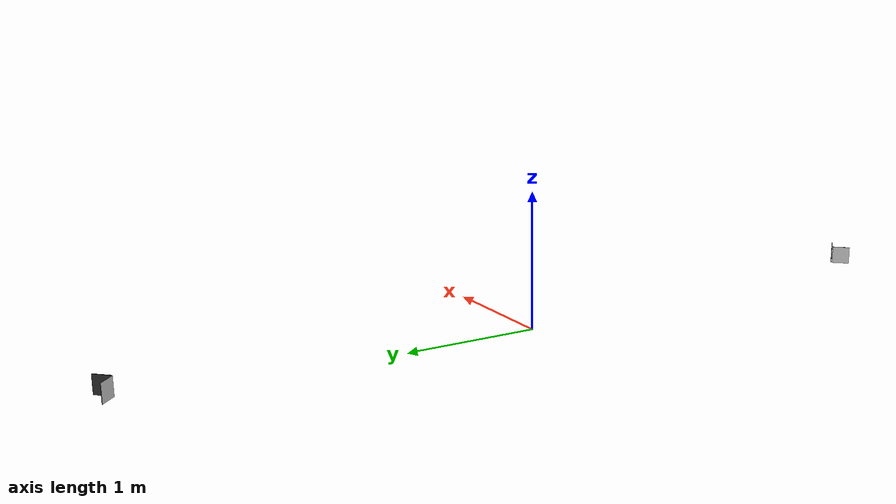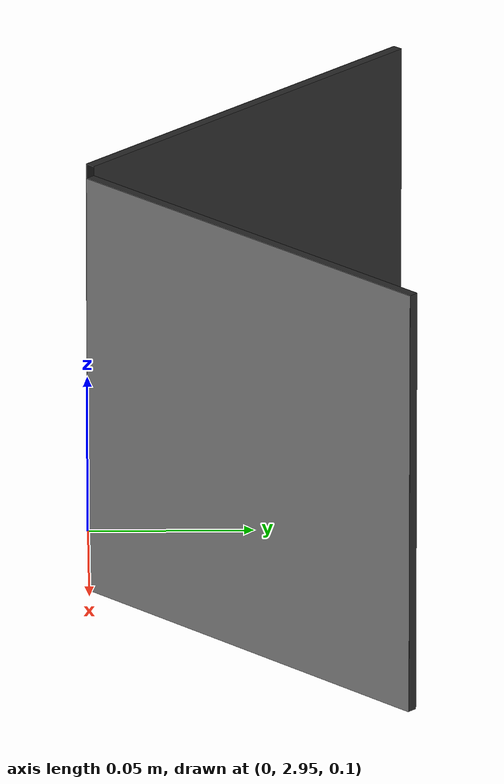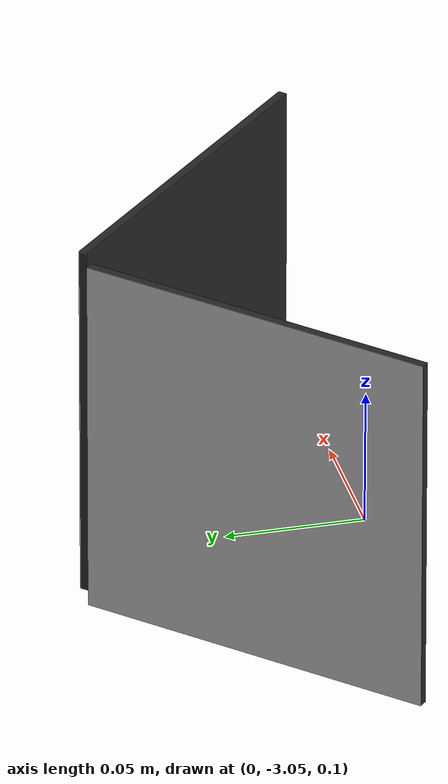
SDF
<?xml version="1.0"?>
<sdf version="1.9">
  <model name="court_apriltags">
    <static>true</static>

    <link name="tag_mount_0">
      <pose>0.053033009 2.996966991 0.150000000 0 0 -0.785398163</pose>
      <visual name="backing">
        <pose>-0.001750 0 0 0 0 0</pose>
        <geometry><box><size>0.003000 0.133333333 0.133333333</size></box></geometry>
        <material><ambient>0.15 0.15 0.15 1</ambient><diffuse>0.15 0.15 0.15 1</diffuse><specular>0 0 0 1</specular></material>
      </visual>
      <visual name="tag_texture"><geometry><mesh><uri>model://court_apriltags/meshes/tag_0.obj</uri></mesh></geometry></visual>
    </link>

    <link name="tag_mount_1">
      <pose>0.053033009 -2.996966991 0.150000000 0 0 0.785398163</pose>
      <visual name="backing">
        <pose>-0.001750 0 0 0 0 0</pose>
        <geometry><box><size>0.003000 0.133333333 0.133333333</size></box></geometry>
        <material><ambient>0.15 0.15 0.15 1</ambient><diffuse>0.15 0.15 0.15 1</diffuse><specular>0 0 0 1</specular></material>
      </visual>
      <visual name="tag_texture"><geometry><mesh><uri>model://court_apriltags/meshes/tag_1.obj</uri></mesh></geometry></visual>
    </link>

    <link name="tag_mount_2">
      <pose>-0.053033009 2.996966991 0.150000000 0 0 -2.356194490</pose>
      <visual name="backing">
        <pose>-0.001750 0 0 0 0 0</pose>
        <geometry><box><size>0.003000 0.133333333 0.133333333</size></box></geometry>
        <material><ambient>0.15 0.15 0.15 1</ambient><diffuse>0.15 0.15 0.15 1</diffuse><specular>0 0 0 1</specular></material>
      </visual>
      <visual name="tag_texture"><geometry><mesh><uri>model://court_apriltags/meshes/tag_2.obj</uri></mesh></geometry></visual>
    </link>

    <link name="tag_mount_3">
      <pose>-0.053033009 -2.996966991 0.150000000 0 0 2.356194490</pose>
      <visual name="backing">
        <pose>-0.001750 0 0 0 0 0</pose>
        <geometry><box><size>0.003000 0.133333333 0.133333333</size></box></geometry>
        <material><ambient>0.15 0.15 0.15 1</ambient><diffuse>0.15 0.15 0.15 1</diffuse><specular>0 0 0 1</specular></material>
      </visual>
      <visual name="tag_texture"><geometry><mesh><uri>model://court_apriltags/meshes/tag_3.obj</uri></mesh></geometry></visual>
    </link>

  </model>
</sdf>
